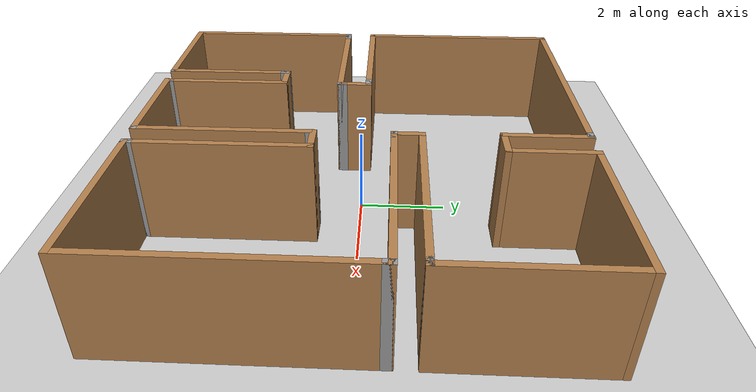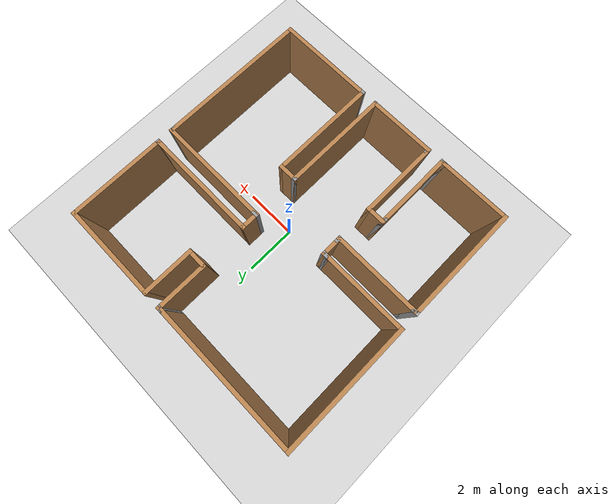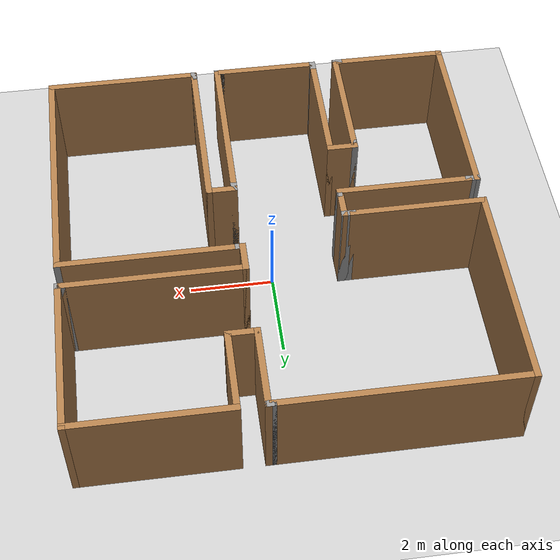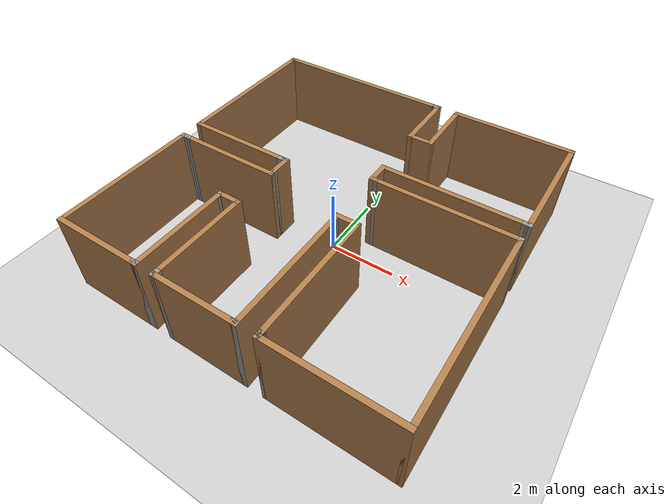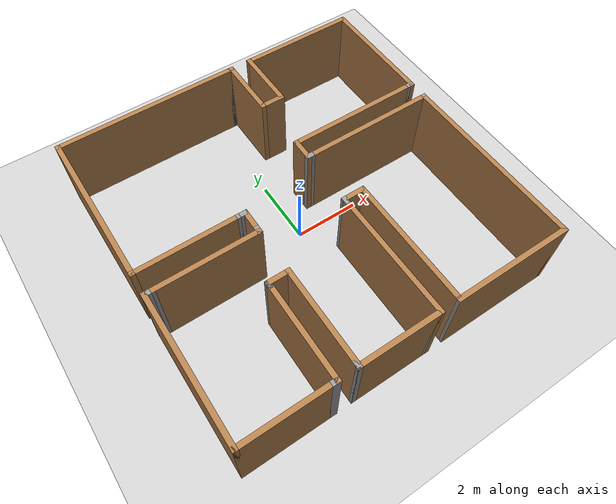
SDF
<sdf version="1.6">
 <world name="default">
  <light name="sun" type="directional">
   <pose>0 0 10 0 -0 0</pose>
   <diffuse>0.8 0.8 0.8 1</diffuse>
   <specular>0.1 0.1 0.1 1</specular>
   <attenuation>
    <range>1000</range>
    <constant>0.9</constant>
    <linear>0.01</linear>
    <quadratic>0.001</quadratic>
   </attenuation>
   <direction>-0.5 0.5 -1</direction>
  </light>
  <model name="ground_plane">
   <static>1</static>
   <link name="link">
    <collision name="collision">
     <geometry><plane><normal>0 0 1</normal><size>100 100</size></plane></geometry>
     <surface><friction><ode><mu>100</mu><mu2>50</mu2></ode></friction></surface>
    </collision>
    <visual name="visual">
     <cast_shadows>0</cast_shadows>
     <geometry><plane><normal>0 0 1</normal><size>100 100</size></plane></geometry>
     <material>
      <script><uri>file://media/materials/scripts/gazebo.material</uri><name>Gazebo/Grey</name></script>
     </material>
    </visual>
   </link>
  </model>
  <gravity>0 0 -9.8</gravity>
  <magnetic_field>6e-06 2.3e-05 -4.2e-05</magnetic_field>
  <atmosphere type="adiabatic"/>
  <physics name="default_physics" default="0" type="ode">
   <max_step_size>0.001</max_step_size>
   <real_time_factor>1</real_time_factor>
   <real_time_update_rate>1000</real_time_update_rate>
  </physics>
  <scene><ambient>0.4 0.4 0.4 1</ambient><background>0.7 0.7 0.7 1</background><shadows>1</shadows></scene>
  <spherical_coordinates>
   <surface_model>EARTH_WGS84</surface_model>
   <latitude_deg>0</latitude_deg>
   <longitude_deg>0</longitude_deg>
   <elevation>0</elevation>
   <heading_deg>0</heading_deg>
  </spherical_coordinates>
  <model name="square">
   <pose>0.001576 -0.006231 0 0 -0 0</pose>
   <link name="Wall_1">
    <collision name="Wall_1_Collision">
     <geometry><box><size>5.75 0.15 2.5</size></box></geometry>
     <pose>0 0 1.25 0 -0 0</pose>
    </collision>
    <visual name="Wall_1_Visual">
     <pose>0 0 1.25 0 -0 0</pose>
     <geometry><box><size>5.75 0.15 2.5</size></box></geometry>
     <material>
      <script><uri>file://media/materials/scripts/gazebo.material</uri><name>Gazebo/Wood</name></script>
      <ambient>1 1 1 1</ambient>
     </material>
    </visual>
    <pose>-2.175 4.94983 0 0 -0 0</pose>
   </link>
   <link name="Wall_10">
    <collision name="Wall_10_Collision">
     <geometry><box><size>0.25 0.15 2.5</size></box></geometry>
     <pose>0 0 1.25 0 -0 0</pose>
    </collision>
    <visual name="Wall_10_Visual">
     <pose>0 0 1.25 0 -0 0</pose>
     <geometry><box><size>0.25 0.15 2.5</size></box></geometry>
     <material>
      <script><uri>file://media/materials/scripts/gazebo.material</uri><name>Gazebo/Grey</name></script>
      <ambient>1 1 1 1</ambient>
     </material>
    </visual>
    <pose>-1.675 -0.550169 0 0 0 -1.5708</pose>
   </link>
   <link name="Wall_11">
    <collision name="Wall_11_Collision">
     <geometry><box><size>3.25 0.15 2.5</size></box></geometry>
     <pose>0 0 1.25 0 -0 0</pose>
    </collision>
    <visual name="Wall_11_Visual">
     <pose>0 0 1.25 0 -0 0</pose>
     <geometry><box><size>3.25 0.15 2.5</size></box></geometry>
     <material>
      <script><uri>file://media/materials/scripts/gazebo.material</uri><name>Gazebo/Wood</name></script>
      <ambient>1 1 1 1</ambient>
     </material>
    </visual>
    <pose>-3.225 -0.600169 0 0 -0 3.14159</pose>
   </link>
   <link name="Wall_12">
    <collision name="Wall_12_Collision">
     <geometry><box><size>0.25 0.15 2.5</size></box></geometry>
     <pose>0 0 1.25 0 -0 0</pose>
    </collision>
    <visual name="Wall_12_Visual">
     <pose>0 0 1.25 0 -0 0</pose>
     <geometry><box><size>0.25 0.15 2.5</size></box></geometry>
     <material>
      <script><uri>file://media/materials/scripts/gazebo.material</uri><name>Gazebo/Grey</name></script>
      <ambient>1 1 1 1</ambient>
     </material>
    </visual>
    <pose>-4.825 -0.600169 0 0 -0 3.14159</pose>
   </link>
   <link name="Wall_13">
    <collision name="Wall_13_Collision">
     <geometry><box><size>0.25 0.15 2.5</size></box></geometry>
     <pose>0 0 1.25 0 -0 0</pose>
    </collision>
    <visual name="Wall_13_Visual">
     <pose>0 0 1.25 0 -0 0</pose>
     <geometry><box><size>0.25 0.15 2.5</size></box></geometry>
     <material>
      <script><uri>file://media/materials/scripts/gazebo.material</uri><name>Gazebo/Grey</name></script>
      <ambient>1 1 1 1</ambient>
     </material>
    </visual>
    <pose>-4.925 -0.600169 0 0 -0 3.14159</pose>
   </link>
   <link name="Wall_14">
    <collision name="Wall_14_Collision">
     <geometry><box><size>4.5 0.15 2.5</size></box></geometry>
     <pose>0 0 1.25 0 -0 0</pose>
    </collision>
    <visual name="Wall_14_Visual">
     <pose>0 0 1.25 0 -0 0</pose>
     <geometry><box><size>4.5 0.15 2.5</size></box></geometry>
     <material>
      <script><uri>file://media/materials/scripts/gazebo.material</uri><name>Gazebo/Wood</name></script>
      <ambient>1 1 1 1</ambient>
     </material>
    </visual>
    <pose>-4.975 -2.77517 0 0 0 -1.5708</pose>
   </link>
   <link name="Wall_16">
    <collision name="Wall_16_Collision">
     <geometry><box><size>2.75 0.15 2.5</size></box></geometry>
     <pose>0 0 1.25 0 -0 0</pose>
    </collision>
    <visual name="Wall_16_Visual">
     <pose>0 0 1.25 0 -0 0</pose>
     <geometry><box><size>2.75 0.15 2.5</size></box></geometry>
     <material>
      <script><uri>file://media/materials/scripts/gazebo.material</uri><name>Gazebo/Wood</name></script>
      <ambient>1 1 1 1</ambient>
     </material>
    </visual>
    <pose>-3.675 -4.95017 0 0 -0 0</pose>
   </link>
   <link name="Wall_17">
    <collision name="Wall_17_Collision">
     <geometry><box><size>0.25 0.15 2.5</size></box></geometry>
     <pose>0 0 1.25 0 -0 0</pose>
    </collision>
    <visual name="Wall_17_Visual">
     <pose>0 0 1.25 0 -0 0</pose>
     <geometry><box><size>0.25 0.15 2.5</size></box></geometry>
     <material>
      <script><uri>file://media/materials/scripts/gazebo.material</uri><name>Gazebo/Grey</name></script>
      <ambient>1 1 1 1</ambient>
     </material>
    </visual>
    <pose>-2.325 -4.95017 0 0 -0 0</pose>
   </link>
   <link name="Wall_18">
    <collision name="Wall_18_Collision">
     <geometry><box><size>3 0.15 2.5</size></box></geometry>
     <pose>0 0 1.25 0 -0 0</pose>
    </collision>
    <visual name="Wall_18_Visual">
     <pose>0 0 1.25 0 -0 0</pose>
     <geometry><box><size>3 0.15 2.5</size></box></geometry>
     <material>
      <script><uri>file://media/materials/scripts/gazebo.material</uri><name>Gazebo/Wood</name></script>
      <ambient>1 1 1 1</ambient>
     </material>
    </visual>
    <pose>-2.275 -3.52517 0 0 -0 1.5708</pose>
   </link>
   <link name="Wall_19">
    <collision name="Wall_19_Collision">
     <geometry><box><size>0.15 0.15 2.5</size></box></geometry>
     <pose>0 0 1.25 0 -0 0</pose>
    </collision>
    <visual name="Wall_19_Visual">
     <pose>0 0 1.25 0 -0 0</pose>
     <geometry><box><size>0.15 0.15 2.5</size></box></geometry>
     <material>
      <script><uri>file://media/materials/scripts/gazebo.material</uri><name>Gazebo/Grey</name></script>
      <ambient>1 1 1 1</ambient>
     </material>
    </visual>
    <pose>-2.275 -2.10017 0 0 -0 0</pose>
   </link>
   <link name="Wall_20">
    <collision name="Wall_20_Collision">
     <geometry><box><size>0.25 0.15 2.5</size></box></geometry>
     <pose>0 0 1.25 0 -0 0</pose>
    </collision>
    <visual name="Wall_20_Visual">
     <pose>0 0 1.25 0 -0 0</pose>
     <geometry><box><size>0.25 0.15 2.5</size></box></geometry>
     <material>
      <script><uri>file://media/materials/scripts/gazebo.material</uri><name>Gazebo/Grey</name></script>
      <ambient>1 1 1 1</ambient>
     </material>
    </visual>
    <pose>-2.275 -2.05017 0 0 -0 1.5708</pose>
   </link>
   <link name="Wall_21">
    <collision name="Wall_21_Collision">
     <geometry><box><size>0.75 0.15 2.5</size></box></geometry>
     <pose>0 0 1.25 0 -0 0</pose>
    </collision>
    <visual name="Wall_21_Visual">
     <pose>0 0 1.25 0 -0 0</pose>
     <geometry><box><size>0.75 0.15 2.5</size></box></geometry>
     <material>
      <script><uri>file://media/materials/scripts/gazebo.material</uri><name>Gazebo/Wood</name></script>
      <ambient>1 1 1 1</ambient>
     </material>
    </visual>
    <pose>-1.975 -2.00017 0 0 -0 0</pose>
   </link>
   <link name="Wall_22">
    <collision name="Wall_22_Collision">
     <geometry><box><size>3 0.15 2.5</size></box></geometry>
     <pose>0 0 1.25 0 -0 0</pose>
    </collision>
    <visual name="Wall_22_Visual">
     <pose>0 0 1.25 0 -0 0</pose>
     <geometry><box><size>3 0.15 2.5</size></box></geometry>
     <material>
      <script><uri>file://media/materials/scripts/gazebo.material</uri><name>Gazebo/Wood</name></script>
      <ambient>1 1 1 1</ambient>
     </material>
    </visual>
    <pose>-1.675 -3.42517 0 0 0 -1.5708</pose>
   </link>
   <link name="Wall_23">
    <collision name="Wall_23_Collision">
     <geometry><box><size>0.25 0.15 2.5</size></box></geometry>
     <pose>0 0 1.25 0 -0 0</pose>
    </collision>
    <visual name="Wall_23_Visual">
     <pose>0 0 1.25 0 -0 0</pose>
     <geometry><box><size>0.25 0.15 2.5</size></box></geometry>
     <material>
      <script><uri>file://media/materials/scripts/gazebo.material</uri><name>Gazebo/Grey</name></script>
      <ambient>1 1 1 1</ambient>
     </material>
    </visual>
    <pose>-1.675 -4.90017 0 0 0 -1.5708</pose>
   </link>
   <link name="Wall_24">
    <collision name="Wall_24_Collision">
     <geometry><box><size>2.5 0.15 2.5</size></box></geometry>
     <pose>0 0 1.25 0 -0 0</pose>
    </collision>
    <visual name="Wall_24_Visual">
     <pose>0 0 1.25 0 -0 0</pose>
     <geometry><box><size>2.5 0.15 2.5</size></box></geometry>
     <material>
      <script><uri>file://media/materials/scripts/gazebo.material</uri><name>Gazebo/Wood</name></script>
      <ambient>1 1 1 1</ambient>
     </material>
    </visual>
    <pose>-0.5 -4.95017 0 0 -0 0</pose>
   </link>
   <link name="Wall_25">
    <collision name="Wall_25_Collision">
     <geometry><box><size>0.15 0.15 2.5</size></box></geometry>
     <pose>0 0 1.25 0 -0 0</pose>
    </collision>
    <visual name="Wall_25_Visual">
     <pose>0 0 1.25 0 -0 0</pose>
     <geometry><box><size>0.15 0.15 2.5</size></box></geometry>
     <material>
      <script><uri>file://media/materials/scripts/gazebo.material</uri><name>Gazebo/Grey</name></script>
      <ambient>1 1 1 1</ambient>
     </material>
    </visual>
    <pose>0.675 -4.95017 0 0 -0 0</pose>
   </link>
   <link name="Wall_26">
    <collision name="Wall_26_Collision">
     <geometry><box><size>0.15 0.15 2.5</size></box></geometry>
     <pose>0 0 1.25 0 -0 0</pose>
    </collision>
    <visual name="Wall_26_Visual">
     <pose>0 0 1.25 0 -0 0</pose>
     <geometry><box><size>0.15 0.15 2.5</size></box></geometry>
     <material>
      <script><uri>file://media/materials/scripts/gazebo.material</uri><name>Gazebo/Grey</name></script>
      <ambient>1 1 1 1</ambient>
     </material>
    </visual>
    <pose>0.675 -4.95017 0 0 -0 0</pose>
   </link>
   <link name="Wall_37">
    <collision name="Wall_37_Collision">
     <geometry><box><size>0.25 0.15 2.5</size></box></geometry>
     <pose>0 0 1.25 0 -0 0</pose>
    </collision>
    <visual name="Wall_37_Visual">
     <pose>0 0 1.25 0 -0 0</pose>
     <geometry><box><size>0.25 0.15 2.5</size></box></geometry>
     <material>
      <script><uri>file://media/materials/scripts/gazebo.material</uri><name>Gazebo/Grey</name></script>
      <ambient>1 1 1 1</ambient>
     </material>
    </visual>
    <pose>0.725 -4.95017 0 0 -0 0</pose>
   </link>
   <link name="Wall_38">
    <collision name="Wall_38_Collision">
     <geometry><box><size>4 0.15 2.5</size></box></geometry>
     <pose>0 0 1.25 0 -0 0</pose>
    </collision>
    <visual name="Wall_38_Visual">
     <pose>0 0 1.25 0 -0 0</pose>
     <geometry><box><size>4 0.15 2.5</size></box></geometry>
     <material>
      <script><uri>file://media/materials/scripts/gazebo.material</uri><name>Gazebo/Wood</name></script>
      <ambient>1 1 1 1</ambient>
     </material>
    </visual>
    <pose>0.775 -3.02517 0 0 -0 1.5708</pose>
   </link>
   <link name="Wall_39">
    <collision name="Wall_39_Collision">
     <geometry><box><size>0.25 0.15 2.5</size></box></geometry>
     <pose>0 0 1.25 0 -0 0</pose>
    </collision>
    <visual name="Wall_39_Visual">
     <pose>0 0 1.25 0 -0 0</pose>
     <geometry><box><size>0.25 0.15 2.5</size></box></geometry>
     <material>
      <script><uri>file://media/materials/scripts/gazebo.material</uri><name>Gazebo/Grey</name></script>
      <ambient>1 1 1 1</ambient>
     </material>
    </visual>
    <pose>0.775 -1.05017 0 0 -0 1.5708</pose>
   </link>
   <link name="Wall_4">
    <collision name="Wall_4_Collision">
     <geometry><box><size>5 0.15 2.5</size></box></geometry>
     <pose>0 0 1.25 0 -0 0</pose>
    </collision>
    <visual name="Wall_4_Visual">
     <pose>0 0 1.25 0 -0 0</pose>
     <geometry><box><size>5 0.15 2.5</size></box></geometry>
     <material>
      <script><uri>file://media/materials/scripts/gazebo.material</uri><name>Gazebo/Wood</name></script>
      <ambient>1 1 1 1</ambient>
     </material>
    </visual>
    <pose>-4.975 2.52483 0 0 0 -1.5708</pose>
   </link>
   <link name="Wall_40">
    <collision name="Wall_40_Collision">
     <geometry><box><size>0.75 0.15 2.5</size></box></geometry>
     <pose>0 0 1.25 0 -0 0</pose>
    </collision>
    <visual name="Wall_40_Visual">
     <pose>0 0 1.25 0 -0 0</pose>
     <geometry><box><size>0.75 0.15 2.5</size></box></geometry>
     <material>
      <script><uri>file://media/materials/scripts/gazebo.material</uri><name>Gazebo/Wood</name></script>
      <ambient>1 1 1 1</ambient>
     </material>
    </visual>
    <pose>1.075 -1.00017 0 0 -0 0</pose>
   </link>
   <link name="Wall_41">
    <collision name="Wall_41_Collision">
     <geometry><box><size>4 0.15 2.5</size></box></geometry>
     <pose>0 0 1.25 0 -0 0</pose>
    </collision>
    <visual name="Wall_41_Visual">
     <pose>0 0 1.25 0 -0 0</pose>
     <geometry><box><size>4 0.15 2.5</size></box></geometry>
     <material>
      <script><uri>file://media/materials/scripts/gazebo.material</uri><name>Gazebo/Wood</name></script>
      <ambient>1 1 1 1</ambient>
     </material>
    </visual>
    <pose>1.375 -2.92517 0 0 0 -1.5708</pose>
   </link>
   <link name="Wall_42">
    <collision name="Wall_42_Collision">
     <geometry><box><size>0.15 0.15 2.5</size></box></geometry>
     <pose>0 0 1.25 0 -0 0</pose>
    </collision>
    <visual name="Wall_42_Visual">
     <pose>0 0 1.25 0 -0 0</pose>
     <geometry><box><size>0.15 0.15 2.5</size></box></geometry>
     <material>
      <script><uri>file://media/materials/scripts/gazebo.material</uri><name>Gazebo/Grey</name></script>
      <ambient>1 1 1 1</ambient>
     </material>
    </visual>
    <pose>1.375 -4.85017 0 0 -0 0</pose>
   </link>
   <link name="Wall_43">
    <collision name="Wall_43_Collision">
     <geometry><box><size>0.25 0.15 2.5</size></box></geometry>
     <pose>0 0 1.25 0 -0 0</pose>
    </collision>
    <visual name="Wall_43_Visual">
     <pose>0 0 1.25 0 -0 0</pose>
     <geometry><box><size>0.25 0.15 2.5</size></box></geometry>
     <material>
      <script><uri>file://media/materials/scripts/gazebo.material</uri><name>Gazebo/Grey</name></script>
      <ambient>1 1 1 1</ambient>
     </material>
    </visual>
    <pose>1.375 -4.90017 0 0 0 -1.5708</pose>
   </link>
   <link name="Wall_44">
    <collision name="Wall_44_Collision">
     <geometry><box><size>3.75 0.15 2.5</size></box></geometry>
     <pose>0 0 1.25 0 -0 0</pose>
    </collision>
    <visual name="Wall_44_Visual">
     <pose>0 0 1.25 0 -0 0</pose>
     <geometry><box><size>3.75 0.15 2.5</size></box></geometry>
     <material>
      <script><uri>file://media/materials/scripts/gazebo.material</uri><name>Gazebo/Wood</name></script>
      <ambient>1 1 1 1</ambient>
     </material>
    </visual>
    <pose>3.175 -4.95017 0 0 -0 0</pose>
   </link>
   <link name="Wall_45">
    <collision name="Wall_45_Collision">
     <geometry><box><size>5.75 0.15 2.5</size></box></geometry>
     <pose>0 0 1.25 0 -0 0</pose>
    </collision>
    <visual name="Wall_45_Visual">
     <pose>0 0 1.25 0 -0 0</pose>
     <geometry><box><size>5.75 0.15 2.5</size></box></geometry>
     <material>
      <script><uri>file://media/materials/scripts/gazebo.material</uri><name>Gazebo/Wood</name></script>
      <ambient>1 1 1 1</ambient>
     </material>
    </visual>
    <pose>4.975 -2.15017 0 0 -0 1.5708</pose>
   </link>
   <link name="Wall_46">
    <collision name="Wall_46_Collision">
     <geometry><box><size>0.25 0.15 2.5</size></box></geometry>
     <pose>0 0 1.25 0 -0 0</pose>
    </collision>
    <visual name="Wall_46_Visual">
     <pose>0 0 1.25 0 -0 0</pose>
     <geometry><box><size>0.25 0.15 2.5</size></box></geometry>
     <material>
      <script><uri>file://media/materials/scripts/gazebo.material</uri><name>Gazebo/Grey</name></script>
      <ambient>1 1 1 1</ambient>
     </material>
    </visual>
    <pose>4.975 0.699831 0 0 -0 1.5708</pose>
   </link>
   <link name="Wall_47">
    <collision name="Wall_47_Collision">
     <geometry><box><size>4.25 0.15 2.5</size></box></geometry>
     <pose>0 0 1.25 0 -0 0</pose>
    </collision>
    <visual name="Wall_47_Visual">
     <pose>0 0 1.25 0 -0 0</pose>
     <geometry><box><size>4.25 0.15 2.5</size></box></geometry>
     <material>
      <script><uri>file://media/materials/scripts/gazebo.material</uri><name>Gazebo/Wood</name></script>
      <ambient>1 1 1 1</ambient>
     </material>
    </visual>
    <pose>2.925 0.749831 0 0 -0 3.14159</pose>
   </link>
   <link name="Wall_48">
    <collision name="Wall_48_Collision">
     <geometry><box><size>0.25 0.15 2.5</size></box></geometry>
     <pose>0 0 1.25 0 -0 0</pose>
    </collision>
    <visual name="Wall_48_Visual">
     <pose>0 0 1.25 0 -0 0</pose>
     <geometry><box><size>0.25 0.15 2.5</size></box></geometry>
     <material>
      <script><uri>file://media/materials/scripts/gazebo.material</uri><name>Gazebo/Grey</name></script>
      <ambient>1 1 1 1</ambient>
     </material>
    </visual>
    <pose>0.825 0.749831 0 0 -0 3.14159</pose>
   </link>
   <link name="Wall_49">
    <collision name="Wall_49_Collision">
     <geometry><box><size>0.75 0.15 2.5</size></box></geometry>
     <pose>0 0 1.25 0 -0 0</pose>
    </collision>
    <visual name="Wall_49_Visual">
     <pose>0 0 1.25 0 -0 0</pose>
     <geometry><box><size>0.75 0.15 2.5</size></box></geometry>
     <material>
      <script><uri>file://media/materials/scripts/gazebo.material</uri><name>Gazebo/Wood</name></script>
      <ambient>1 1 1 1</ambient>
     </material>
    </visual>
    <pose>0.775 1.04983 0 0 -0 1.5708</pose>
   </link>
   <link name="Wall_5">
    <collision name="Wall_5_Collision">
     <geometry><box><size>3.25 0.15 2.5</size></box></geometry>
     <pose>0 0 1.25 0 -0 0</pose>
    </collision>
    <visual name="Wall_5_Visual">
     <pose>0 0 1.25 0 -0 0</pose>
     <geometry><box><size>3.25 0.15 2.5</size></box></geometry>
     <material>
      <script><uri>file://media/materials/scripts/gazebo.material</uri><name>Gazebo/Wood</name></script>
      <ambient>1 1 1 1</ambient>
     </material>
    </visual>
    <pose>-3.425 0.099831 0 0 -0 0</pose>
   </link>
   <link name="Wall_51">
    <collision name="Wall_51_Collision">
     <geometry><box><size>4.25 0.15 2.5</size></box></geometry>
     <pose>0 0 1.25 0 -0 0</pose>
    </collision>
    <visual name="Wall_51_Visual">
     <pose>0 0 1.25 0 -0 0</pose>
     <geometry><box><size>4.25 0.15 2.5</size></box></geometry>
     <material>
      <script><uri>file://media/materials/scripts/gazebo.material</uri><name>Gazebo/Wood</name></script>
      <ambient>1 1 1 1</ambient>
     </material>
    </visual>
    <pose>2.825 1.34983 0 0 -0 0</pose>
   </link>
   <link name="Wall_52">
    <collision name="Wall_52_Collision">
     <geometry><box><size>0.25 0.15 2.5</size></box></geometry>
     <pose>0 0 1.25 0 -0 0</pose>
    </collision>
    <visual name="Wall_52_Visual">
     <pose>0 0 1.25 0 -0 0</pose>
     <geometry><box><size>0.25 0.15 2.5</size></box></geometry>
     <material>
      <script><uri>file://media/materials/scripts/gazebo.material</uri><name>Gazebo/Grey</name></script>
      <ambient>1 1 1 1</ambient>
     </material>
    </visual>
    <pose>4.925 1.34983 0 0 -0 0</pose>
   </link>
   <link name="Wall_53">
    <collision name="Wall_53_Collision">
     <geometry><box><size>3.75 0.15 2.5</size></box></geometry>
     <pose>0 0 1.25 0 -0 0</pose>
    </collision>
    <visual name="Wall_53_Visual">
     <pose>0 0 1.25 0 -0 0</pose>
     <geometry><box><size>3.75 0.15 2.5</size></box></geometry>
     <material>
      <script><uri>file://media/materials/scripts/gazebo.material</uri><name>Gazebo/Wood</name></script>
      <ambient>1 1 1 1</ambient>
     </material>
    </visual>
    <pose>4.975 3.14983 0 0 -0 1.5708</pose>
   </link>
   <link name="Wall_54">
    <collision name="Wall_54_Collision">
     <geometry><box><size>3.75 0.15 2.5</size></box></geometry>
     <pose>0 0 1.25 0 -0 0</pose>
    </collision>
    <visual name="Wall_54_Visual">
     <pose>0 0 1.25 0 -0 0</pose>
     <geometry><box><size>3.75 0.15 2.5</size></box></geometry>
     <material>
      <script><uri>file://media/materials/scripts/gazebo.material</uri><name>Gazebo/Wood</name></script>
      <ambient>1 1 1 1</ambient>
     </material>
    </visual>
    <pose>3.175 4.94983 0 0 -0 3.14159</pose>
   </link>
   <link name="Wall_55">
    <collision name="Wall_55_Collision">
     <geometry><box><size>2 0.15 2.5</size></box></geometry>
     <pose>0 0 1.25 0 -0 0</pose>
    </collision>
    <visual name="Wall_55_Visual">
     <pose>0 0 1.25 0 -0 0</pose>
     <geometry><box><size>2 0.15 2.5</size></box></geometry>
     <material>
      <script><uri>file://media/materials/scripts/gazebo.material</uri><name>Gazebo/Wood</name></script>
      <ambient>1 1 1 1</ambient>
     </material>
    </visual>
    <pose>1.375 4.02483 0 0 0 -1.5708</pose>
   </link>
   <link name="Wall_56">
    <collision name="Wall_56_Collision">
     <geometry><box><size>0.75 0.15 2.5</size></box></geometry>
     <pose>0 0 1.25 0 -0 0</pose>
    </collision>
    <visual name="Wall_56_Visual">
     <pose>0 0 1.25 0 -0 0</pose>
     <geometry><box><size>0.75 0.15 2.5</size></box></geometry>
     <material>
      <script><uri>file://media/materials/scripts/gazebo.material</uri><name>Gazebo/Wood</name></script>
      <ambient>1 1 1 1</ambient>
     </material>
    </visual>
    <pose>1.075 3.09983 0 0 -0 3.14159</pose>
   </link>
   <link name="Wall_6">
    <collision name="Wall_6_Collision">
     <geometry><box><size>0.25 0.15 2.5</size></box></geometry>
     <pose>0 0 1.25 0 -0 0</pose>
    </collision>
    <visual name="Wall_6_Visual">
     <pose>0 0 1.25 0 -0 0</pose>
     <geometry><box><size>0.25 0.15 2.5</size></box></geometry>
     <material>
      <script><uri>file://media/materials/scripts/gazebo.material</uri><name>Gazebo/Grey</name></script>
      <ambient>1 1 1 1</ambient>
     </material>
    </visual>
    <pose>-1.825 0.099831 0 0 -0 0</pose>
   </link>
   <link name="Wall_62">
    <collision name="Wall_62_Collision">
     <geometry><box><size>0.15 0.15 2.5</size></box></geometry>
     <pose>0 0 1.25 0 -0 0</pose>
    </collision>
    <visual name="Wall_62_Visual">
     <pose>0 0 1.25 0 -0 0</pose>
     <geometry><box><size>0.15 0.15 2.5</size></box></geometry>
     <material>
      <script><uri>file://media/materials/scripts/gazebo.material</uri><name>Gazebo/Grey</name></script>
      <ambient>1 1 1 1</ambient>
     </material>
    </visual>
    <pose>0.625 4.94983 0 0 -0 0</pose>
   </link>
   <link name="Wall_63">
    <collision name="Wall_63_Collision">
     <geometry><box><size>0.25 0.15 2.5</size></box></geometry>
     <pose>0 0 1.25 0 -0 0</pose>
    </collision>
    <visual name="Wall_63_Visual">
     <pose>0 0 1.25 0 -0 0</pose>
     <geometry><box><size>0.25 0.15 2.5</size></box></geometry>
     <material>
      <script><uri>file://media/materials/scripts/gazebo.material</uri><name>Gazebo/Grey</name></script>
      <ambient>1 1 1 1</ambient>
     </material>
    </visual>
    <pose>0.675 4.94983 0 0 -0 0</pose>
   </link>
   <link name="Wall_64">
    <collision name="Wall_64_Collision">
     <geometry><box><size>2.00068 0.15 2.5</size></box></geometry>
     <pose>0 0 1.25 0 -0 0</pose>
    </collision>
    <visual name="Wall_64_Visual">
     <pose>0 0 1.25 0 -0 0</pose>
     <geometry><box><size>2.00068 0.15 2.5</size></box></geometry>
     <material>
      <script><uri>file://media/materials/scripts/gazebo.material</uri><name>Gazebo/Wood</name></script>
      <ambient>1 1 1 1</ambient>
     </material>
    </visual>
    <pose>0.725 4.02483 0 0 0 -1.5708</pose>
   </link>
   <link name="Wall_7">
    <collision name="Wall_7_Collision">
     <geometry><box><size>0.25 0.15 2.5</size></box></geometry>
     <pose>0 0 1.25 0 -0 0</pose>
    </collision>
    <visual name="Wall_7_Visual">
     <pose>0 0 1.25 0 -0 0</pose>
     <geometry><box><size>0.25 0.15 2.5</size></box></geometry>
     <material>
      <script><uri>file://media/materials/scripts/gazebo.material</uri><name>Gazebo/Grey</name></script>
      <ambient>1 1 1 1</ambient>
     </material>
    </visual>
    <pose>-1.725 0.099831 0 0 -0 0</pose>
   </link>
   <link name="Wall_8">
    <collision name="Wall_8_Collision">
     <geometry><box><size>0.75 0.15 2.5</size></box></geometry>
     <pose>0 0 1.25 0 -0 0</pose>
    </collision>
    <visual name="Wall_8_Visual">
     <pose>0 0 1.25 0 -0 0</pose>
     <geometry><box><size>0.75 0.15 2.5</size></box></geometry>
     <material>
      <script><uri>file://media/materials/scripts/gazebo.material</uri><name>Gazebo/Wood</name></script>
      <ambient>1 1 1 1</ambient>
     </material>
    </visual>
    <pose>-1.675 -0.200169 0 0 0 -1.5708</pose>
   </link>
   <link name="Wall_9">
    <collision name="Wall_9_Collision">
     <geometry><box><size>0.15 0.15 2.5</size></box></geometry>
     <pose>0 0 1.25 0 -0 0</pose>
    </collision>
    <visual name="Wall_9_Visual">
     <pose>0 0 1.25 0 -0 0</pose>
     <geometry><box><size>0.15 0.15 2.5</size></box></geometry>
     <material>
      <script><uri>file://media/materials/scripts/gazebo.material</uri><name>Gazebo/Grey</name></script>
      <ambient>1 1 1 1</ambient>
     </material>
    </visual>
    <pose>-1.675 -0.500169 0 0 -0 0</pose>
   </link>
   <static>1</static>
  </model>
 </world>
</sdf>
